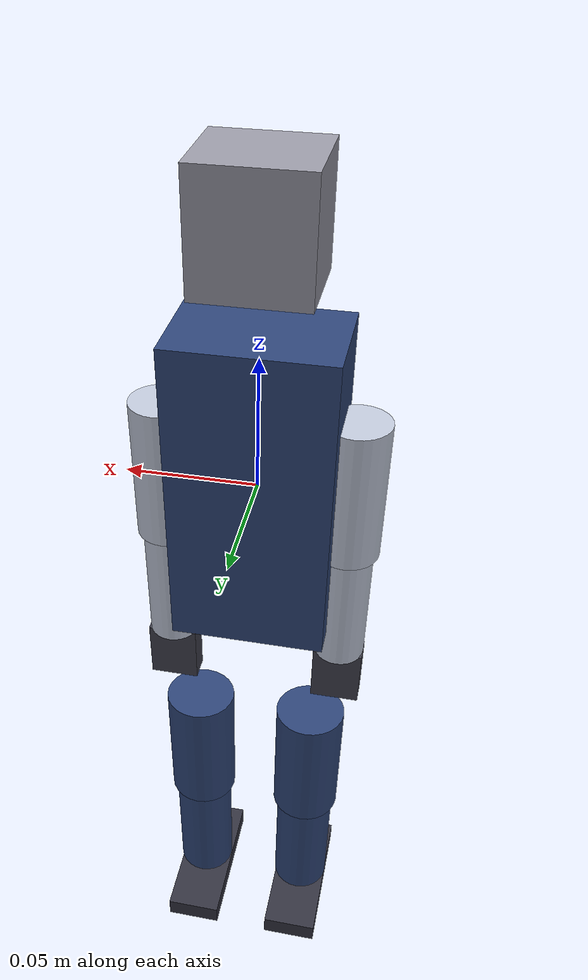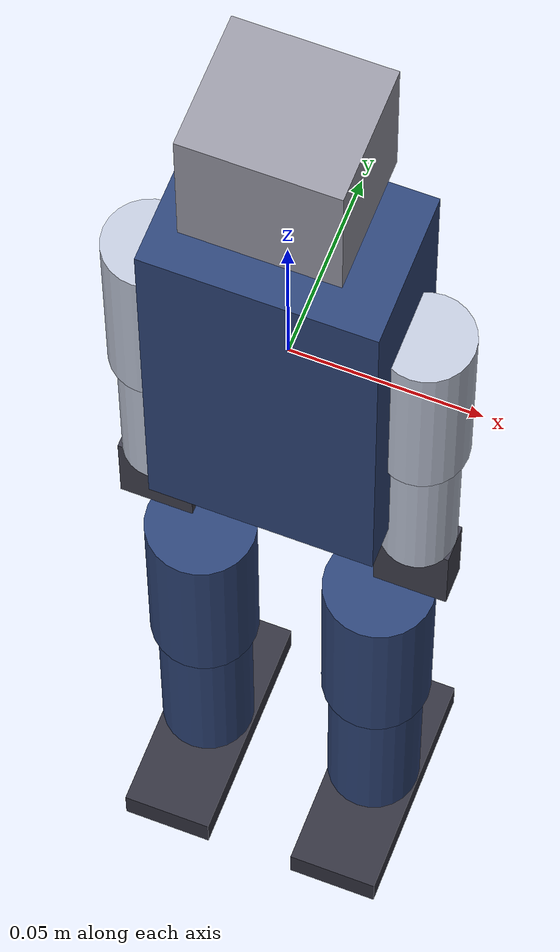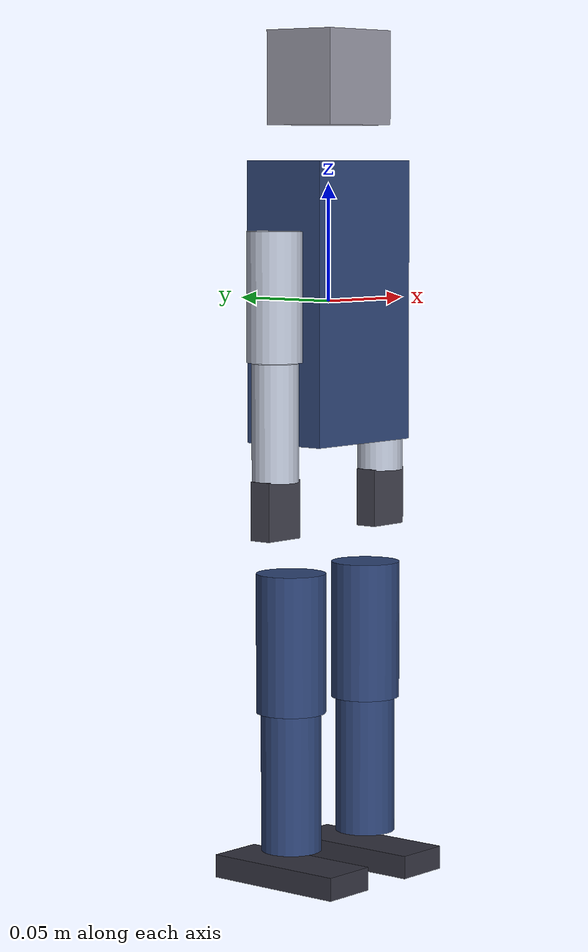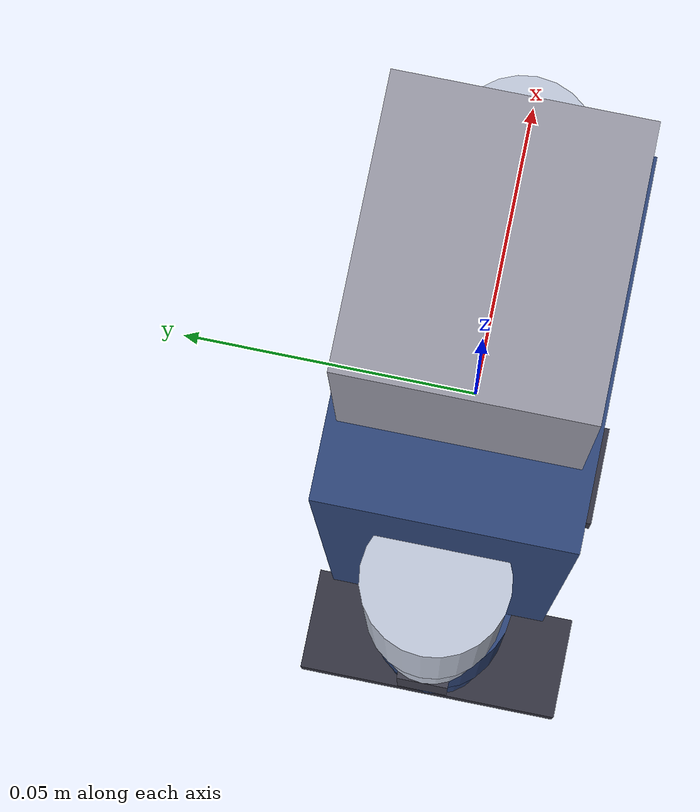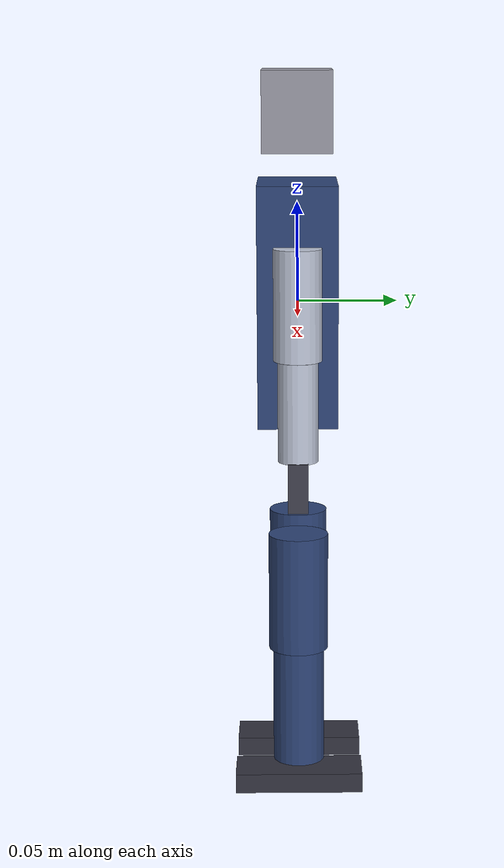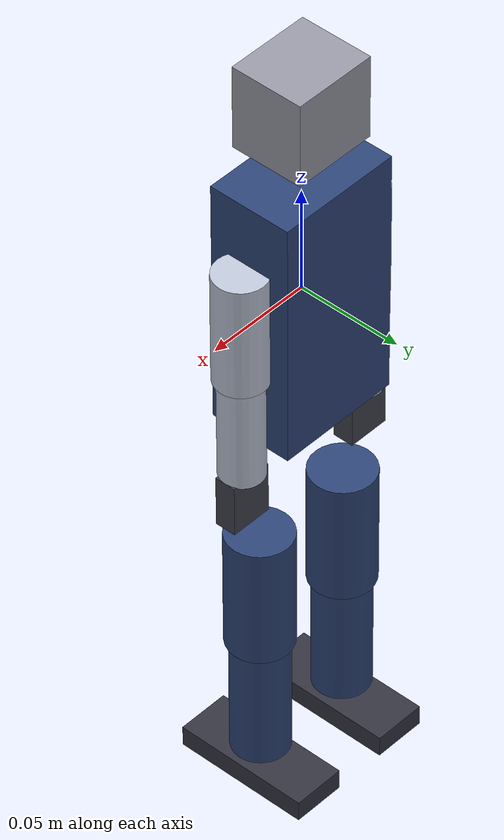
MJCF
<mujoco model="roboforge_humanoid_v2">
  <compiler angle="radian"/>

  <worldbody>
    <geom size="0.03 0.02 0.06" type="box" rgba="0.18 0.27 0.47 1"/>
    <body name="head_yaw_link" pos="0 0 0.07">
      <inertial pos="0 0 0" mass="0.009" diaginertia="0.0001 0.0001 0.0001"/>
      <joint name="head_pan" pos="0 0 0" axis="0 0 1" range="-1.047 1.047" actuatorfrcrange="-0.245 0.245"/>
      <body name="head" pos="0 0 0.025">
        <inertial pos="0 0 0" quat="0.707107 0 0 0.707107" mass="0.05" diaginertia="1.33e-05 1.2e-05 1.2e-05"/>
        <joint name="head_tilt" pos="0 0 0" axis="1 0 0" range="-0.524 0.524" actuatorfrcrange="-0.245 0.245"/>
        <geom size="0.02 0.0175 0.02" type="box" rgba="0.6 0.6 0.65 1"/>
      </body>
    </body>
    <body name="left_shoulder_pitch_link" pos="0.035 0 0.04">
      <inertial pos="0 0 0" mass="0.009" diaginertia="0.0001 0.0001 0.0001"/>
      <joint name="left_shoulder_pitch" pos="0 0 0" axis="1 0 0" range="-1.571 1.571" actuatorfrcrange="-0.245 0.245"/>
      <body name="left_upper_arm" pos="0 0 -0.01">
        <inertial pos="0 0 0" mass="0.05" diaginertia="1.45e-05 1.45e-05 3.6e-06"/>
        <joint name="left_shoulder_roll" pos="0 0 0" axis="0 1 0" range="-1.047 1.047" actuatorfrcrange="-0.245 0.245"/>
        <geom size="0.012 0.0275" pos="0 0 -0.027" type="cylinder" rgba="0.75 0.78 0.85 1"/>
        <body name="left_lower_arm" pos="0 0 -0.055">
          <inertial pos="0 0 0" mass="0.04" diaginertia="8.8e-06 8.8e-06 2e-06"/>
          <joint name="left_elbow_pitch" pos="0 0 0" axis="1 0 0" range="0 2.094" actuatorfrcrange="-0.245 0.245"/>
          <geom size="0.01 0.025" pos="0 0 -0.025" type="cylinder" rgba="0.75 0.78 0.85 1"/>
          <body name="left_hand" pos="0 0 -0.05">
            <inertial pos="0 0 0" quat="0.707107 0 0 0.707107" mass="0.015" diaginertia="1.2e-06 9e-07 6e-07"/>
            <joint name="left_wrist_pitch" pos="0 0 0" axis="1 0 0" range="-1.571 1.571" actuatorfrcrange="-0.245 0.245"/>
            <geom size="0.01 0.005 0.0125" pos="0 0 -0.012" type="box" rgba="0.25 0.25 0.3 1"/>
          </body>
        </body>
      </body>
    </body>
    <body name="right_shoulder_pitch_link" pos="-0.035 0 0.04">
      <inertial pos="0 0 0" mass="0.009" diaginertia="0.0001 0.0001 0.0001"/>
      <joint name="right_shoulder_pitch" pos="0 0 0" axis="1 0 0" range="-1.571 1.571" actuatorfrcrange="-0.245 0.245"/>
      <body name="right_upper_arm" pos="0 0 -0.01">
        <inertial pos="0 0 0" mass="0.05" diaginertia="1.45e-05 1.45e-05 3.6e-06"/>
        <joint name="right_shoulder_roll" pos="0 0 0" axis="0 1 0" range="-1.047 1.047" actuatorfrcrange="-0.245 0.245"/>
        <geom size="0.012 0.0275" pos="0 0 -0.027" type="cylinder" rgba="0.75 0.78 0.85 1"/>
        <body name="right_lower_arm" pos="0 0 -0.055">
          <inertial pos="0 0 0" mass="0.04" diaginertia="8.8e-06 8.8e-06 2e-06"/>
          <joint name="right_elbow_pitch" pos="0 0 0" axis="1 0 0" range="0 2.094" actuatorfrcrange="-0.245 0.245"/>
          <geom size="0.01 0.025" pos="0 0 -0.025" type="cylinder" rgba="0.75 0.78 0.85 1"/>
          <body name="right_hand" pos="0 0 -0.05">
            <inertial pos="0 0 0" quat="0.707107 0 0 0.707107" mass="0.015" diaginertia="1.2e-06 9e-07 6e-07"/>
            <joint name="right_wrist_pitch" pos="0 0 0" axis="1 0 0" range="-1.571 1.571" actuatorfrcrange="-0.245 0.245"/>
            <geom size="0.01 0.005 0.0125" pos="0 0 -0.012" type="box" rgba="0.25 0.25 0.3 1"/>
          </body>
        </body>
      </body>
    </body>
    <body name="left_hip_yaw_link" pos="0.025 0 -0.065">
      <inertial pos="0 0 0" mass="0.055" diaginertia="0.0002 0.0002 0.0002"/>
      <joint name="left_hip_yaw" pos="0 0 0" axis="0 0 1" range="-0.524 0.524" actuatorfrcrange="-0.98 0.98"/>
      <body name="left_hip_roll_link" pos="0 0 -0.03">
        <inertial pos="0 0 0" mass="0.055" diaginertia="0.0002 0.0002 0.0002"/>
        <joint name="left_hip_roll" pos="0 0 0" axis="0 1 0" range="-0.524 0.524" actuatorfrcrange="-0.98 0.98"/>
        <body name="left_upper_leg" pos="0 0 -0.02">
          <inertial pos="0 0 0" mass="0.1" diaginertia="0.0004 0.0004 0.0001"/>
          <joint name="left_hip_pitch" pos="0 0 0" axis="1 0 0" range="-1.047 0.785" actuatorfrcrange="-0.98 0.98"/>
          <geom size="0.015 0.03" pos="0 0 -0.03" type="cylinder" rgba="0.18 0.27 0.47 1"/>
          <body name="left_lower_leg" pos="0 0 -0.06">
            <inertial pos="0 0 0" mass="0.1" diaginertia="0.0004 0.0004 0.0001"/>
            <joint name="left_knee_pitch" pos="0 0 0" axis="1 0 0" range="0 2.094" actuatorfrcrange="-0.98 0.98"/>
            <geom size="0.013 0.03" pos="0 0 -0.03" type="cylinder" rgba="0.18 0.27 0.47 1"/>
            <body name="left_ankle_pitch_link" pos="0 0 -0.06">
              <inertial pos="0 0 0" mass="0.055" diaginertia="0.0001 0.0001 0.0001"/>
              <joint name="left_ankle_pitch" pos="0 0 0" axis="1 0 0" range="-0.785 0.785" actuatorfrcrange="-0.98 0.98"/>
              <body name="left_foot" pos="0 0 -0.005">
                <inertial pos="0 0 0" quat="0.5 0.5 -0.5 0.5" mass="0.055" diaginertia="0.0003 0.0002 0.0001"/>
                <joint name="left_ankle_roll" pos="0 0 0" axis="0 1 0" range="-0.524 0.524" actuatorfrcrange="-0.98 0.98"/>
                <geom size="0.0125 0.0325 0.005" pos="0 0 -0.005" type="box" rgba="0.2 0.2 0.25 1"/>
              </body>
            </body>
          </body>
        </body>
      </body>
    </body>
    <body name="right_hip_yaw_link" pos="-0.025 0 -0.065">
      <inertial pos="0 0 0" mass="0.055" diaginertia="0.0002 0.0002 0.0002"/>
      <joint name="right_hip_yaw" pos="0 0 0" axis="0 0 1" range="-0.524 0.524" actuatorfrcrange="-0.98 0.98"/>
      <body name="right_hip_roll_link" pos="0 0 -0.03">
        <inertial pos="0 0 0" mass="0.055" diaginertia="0.0002 0.0002 0.0002"/>
        <joint name="right_hip_roll" pos="0 0 0" axis="0 1 0" range="-0.524 0.524" actuatorfrcrange="-0.98 0.98"/>
        <body name="right_upper_leg" pos="0 0 -0.02">
          <inertial pos="0 0 0" mass="0.1" diaginertia="0.0004 0.0004 0.0001"/>
          <joint name="right_hip_pitch" pos="0 0 0" axis="1 0 0" range="-1.047 0.785" actuatorfrcrange="-0.98 0.98"/>
          <geom size="0.015 0.03" pos="0 0 -0.03" type="cylinder" rgba="0.18 0.27 0.47 1"/>
          <body name="right_lower_leg" pos="0 0 -0.06">
            <inertial pos="0 0 0" mass="0.1" diaginertia="0.0004 0.0004 0.0001"/>
            <joint name="right_knee_pitch" pos="0 0 0" axis="1 0 0" range="0 2.094" actuatorfrcrange="-0.98 0.98"/>
            <geom size="0.013 0.03" pos="0 0 -0.03" type="cylinder" rgba="0.18 0.27 0.47 1"/>
            <body name="right_ankle_pitch_link" pos="0 0 -0.06">
              <inertial pos="0 0 0" mass="0.055" diaginertia="0.0001 0.0001 0.0001"/>
              <joint name="right_ankle_pitch" pos="0 0 0" axis="1 0 0" range="-0.785 0.785" actuatorfrcrange="-0.98 0.98"/>
              <body name="right_foot" pos="0 0 -0.005">
                <inertial pos="0 0 0" quat="0.5 0.5 -0.5 0.5" mass="0.055" diaginertia="0.0003 0.0002 0.0001"/>
                <joint name="right_ankle_roll" pos="0 0 0" axis="0 1 0" range="-0.524 0.524" actuatorfrcrange="-0.98 0.98"/>
                <geom size="0.0125 0.0325 0.005" pos="0 0 -0.005" type="box" rgba="0.2 0.2 0.25 1"/>
              </body>
            </body>
          </body>
        </body>
      </body>
    </body>
  </worldbody>
</mujoco>
